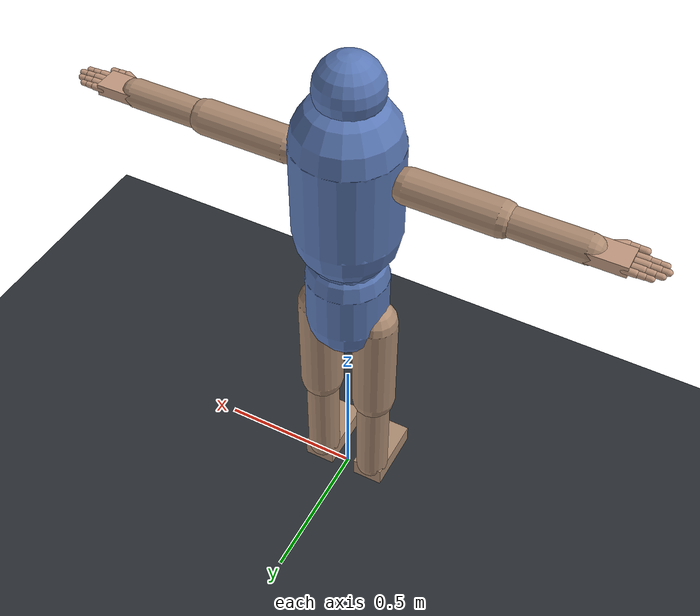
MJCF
<mujoco model="rigby_canonical_human_medium">
  <compiler angle="degree" autolimits="true" inertiafromgeom="auto"/>
  <option timestep="0.0041666667" integrator="implicitfast" solver="Newton" iterations="100">
    <flag filterparent="enable"/>
  </option>
  <size nconmax="600" njmax="3000"/>
  <visual>
    <headlight ambient="0.35 0.35 0.35" diffuse="0.65 0.65 0.65"/>
  </visual>
  <default>
    <joint armature="0.006" damping="0.35" frictionloss="0.03"/>
    <geom type="capsule" density="560" friction="0.9 0.03 0.003"
          solref="0.006 1" solimp="0.9 0.97 0.002" contype="1" conaffinity="1"/>
    <site type="sphere" size="0.008" rgba="1 0.25 0.15 1" group="3"/>
    <motor ctrllimited="true" ctrlrange="-150 150"/>
    <default class="trunk">
      <geom rgba="0.36 0.48 0.72 1"/>
      <joint armature="0.02" damping="1.4"/>
    </default>
    <default class="limb">
      <geom rgba="0.68 0.55 0.45 1"/>
      <joint damping="0.75"/>
    </default>
    <default class="hand">
      <geom rgba="0.76 0.60 0.50 1" density="530"/>
      <joint armature="0.001" damping="0.08" frictionloss="0.01"/>
    </default>
  </default>

  <worldbody>
    <geom name="ground" type="plane" size="4 4 0.1" density="0"
          rgba="0.16 0.18 0.20 1" friction="1.0 0.02 0.002"/>
    <body name="pelvis" pos="0 0 0.900" childclass="trunk">
      <freejoint name="pelvis_free"/>
      <geom name="pelvis_collision" type="capsule" fromto="0 0 -0.08 0 0 0.09" size="0.135"/>
      <site name="pelvis_center" pos="0 0 0" size="0.012"/>

      <body name="lumbar" pos="0 0 0.10">
        <joint name="spine_flex" axis="1 0 0" range="-35 45"/>
        <joint name="spine_side" axis="0 1 0" range="-28 28"/>
        <joint name="spine_twist" axis="0 0 1" range="-40 40"/>
        <geom name="lumbar_collision" fromto="0 0 0 0 0 0.21" size="0.115"/>
        <body name="torso" pos="0 0 0.19">
          <joint name="chest_flex" axis="1 0 0" range="-25 35"/>
          <joint name="chest_side" axis="0 1 0" range="-22 22"/>
          <joint name="chest_twist" axis="0 0 1" range="-35 35"/>
          <geom name="torso_collision" fromto="0 0 0 0 0 0.31" size="0.17"/>
          <site name="sternum" pos="0 -0.16 0.21" size="0.01"/>

          <body name="neck" pos="0 0 0.30">
            <joint name="neck_flex" axis="1 0 0" range="-45 55"/>
            <joint name="neck_side" axis="0 1 0" range="-35 35"/>
            <joint name="neck_twist" axis="0 0 1" range="-70 70"/>
            <geom name="neck_collision" fromto="0 0 0 0 0 0.10" size="0.055"/>
            <body name="head" pos="0 0 0.11">
              <geom name="head_collision" type="sphere" pos="0 -0.01 0.075" size="0.105" density="480"/>
              <site name="head_center" pos="0 -0.01 0.075" size="0.012"/>
              <site name="gaze_origin" pos="0 -0.10 0.09" size="0.006"/>
            </body>
          </body>

          <body name="left_upper_arm" pos="0.19 0 0.23" childclass="limb">
            <joint name="left_shoulder_flex" axis="0 1 0" range="-170 170"/>
            <joint name="left_shoulder_abduct" axis="1 0 0" range="-100 180"/>
            <joint name="left_shoulder_twist" axis="0 0 1" range="-100 100"/>
            <geom name="left_upper_arm_collision" fromto="0 0 0 0.28 0 0" size="0.055"/>
            <body name="left_lower_arm" pos="0.28 0 0">
              <joint name="left_elbow_flex" axis="0 1 0" range="0 150"/>
              <joint name="left_forearm_twist" axis="1 0 0" range="-90 90"/>
              <geom name="left_lower_arm_collision" fromto="0 0 0 0.25 0 0" size="0.045"/>
              <body name="left_hand" pos="0.25 0 0" childclass="hand">
                <joint name="left_wrist_flex" axis="0 1 0" range="-75 75"/>
                <joint name="left_wrist_deviation" axis="0 0 1" range="-30 35"/>
                <geom name="left_palm_collision" type="box" pos="0.055 0 0" size="0.060 0.042 0.018"/>
                <site name="left_palm" pos="0.06 -0.043 0" size="0.01"/>

                <body name="left_thumb_proximal" pos="0.045 -0.047 -0.005">
                  <joint name="left_thumb_opposition" axis="0 0 1" range="-55 55"/>
                  <joint name="left_thumb_mcp" axis="0 1 0" range="-20 70"/>
                  <geom name="left_thumb_proximal_collision" fromto="0 0 0 0.035 -0.018 0" size="0.014"/>
                  <body name="left_thumb_middle" pos="0.035 -0.018 0">
                    <joint name="left_thumb_pip" axis="0 1 0" range="0 85"/>
                    <geom name="left_thumb_middle_collision" fromto="0 0 0 0.028 0 0" size="0.012"/>
                    <body name="left_thumb_distal" pos="0.028 0 0">
                      <joint name="left_thumb_dip" axis="0 1 0" range="0 80"/>
                      <geom name="left_thumb_distal_collision" fromto="0 0 0 0.025 0 0" size="0.011"/>
                      <site name="left_thumb_tip" pos="0.026 0 0"/>
                    </body>
                  </body>
                </body>
                <body name="left_index_proximal" pos="0.108 -0.031 0">
                  <joint name="left_index_mcp" axis="0 1 0" range="-15 95"/>
                  <geom name="left_index_proximal_collision" fromto="0 0 0 0.040 0 0" size="0.012"/>
                  <body name="left_index_middle" pos="0.040 0 0">
                    <joint name="left_index_pip" axis="0 1 0" range="0 115"/>
                    <geom name="left_index_middle_collision" fromto="0 0 0 0.027 0 0" size="0.0105"/>
                    <body name="left_index_distal" pos="0.027 0 0">
                      <joint name="left_index_dip" axis="0 1 0" range="0 90"/>
                      <geom name="left_index_distal_collision" fromto="0 0 0 0.022 0 0" size="0.0095"/>
                      <site name="left_index_tip" pos="0.023 0 0"/>
                    </body>
                  </body>
                </body>
                <body name="left_middle_proximal" pos="0.112 -0.010 0">
                  <joint name="left_middle_mcp" axis="0 1 0" range="-15 95"/>
                  <geom name="left_middle_proximal_collision" fromto="0 0 0 0.043 0 0" size="0.0125"/>
                  <body name="left_middle_middle" pos="0.043 0 0">
                    <joint name="left_middle_pip" axis="0 1 0" range="0 115"/>
                    <geom name="left_middle_middle_collision" fromto="0 0 0 0.030 0 0" size="0.011"/>
                    <body name="left_middle_distal" pos="0.030 0 0">
                      <joint name="left_middle_dip" axis="0 1 0" range="0 90"/>
                      <geom name="left_middle_distal_collision" fromto="0 0 0 0.023 0 0" size="0.010"/>
                      <site name="left_middle_tip" pos="0.024 0 0"/>
                    </body>
                  </body>
                </body>
                <body name="left_ring_proximal" pos="0.108 0.012 0">
                  <joint name="left_ring_mcp" axis="0 1 0" range="-15 95"/>
                  <geom name="left_ring_proximal_collision" fromto="0 0 0 0.040 0 0" size="0.012"/>
                  <body name="left_ring_middle" pos="0.040 0 0">
                    <joint name="left_ring_pip" axis="0 1 0" range="0 115"/>
                    <geom name="left_ring_middle_collision" fromto="0 0 0 0.028 0 0" size="0.0105"/>
                    <body name="left_ring_distal" pos="0.028 0 0">
                      <joint name="left_ring_dip" axis="0 1 0" range="0 90"/>
                      <geom name="left_ring_distal_collision" fromto="0 0 0 0.022 0 0" size="0.0095"/>
                      <site name="left_ring_tip" pos="0.023 0 0"/>
                    </body>
                  </body>
                </body>
                <body name="left_little_proximal" pos="0.100 0.033 0">
                  <joint name="left_little_mcp" axis="0 1 0" range="-15 100"/>
                  <geom name="left_little_proximal_collision" fromto="0 0 0 0.034 0 0" size="0.011"/>
                  <body name="left_little_middle" pos="0.034 0 0">
                    <joint name="left_little_pip" axis="0 1 0" range="0 120"/>
                    <geom name="left_little_middle_collision" fromto="0 0 0 0.023 0 0" size="0.0095"/>
                    <body name="left_little_distal" pos="0.023 0 0">
                      <joint name="left_little_dip" axis="0 1 0" range="0 95"/>
                      <geom name="left_little_distal_collision" fromto="0 0 0 0.019 0 0" size="0.0085"/>
                      <site name="left_little_tip" pos="0.020 0 0"/>
                    </body>
                  </body>
                </body>
              </body>
            </body>
          </body>

          <body name="right_upper_arm" pos="-0.19 0 0.23" childclass="limb">
            <joint name="right_shoulder_flex" axis="0 1 0" range="-170 170"/>
            <joint name="right_shoulder_abduct" axis="1 0 0" range="-180 100"/>
            <joint name="right_shoulder_twist" axis="0 0 1" range="-100 100"/>
            <geom name="right_upper_arm_collision" fromto="0 0 0 -0.28 0 0" size="0.055"/>
            <body name="right_lower_arm" pos="-0.28 0 0">
              <joint name="right_elbow_flex" axis="0 -1 0" range="0 150"/>
              <joint name="right_forearm_twist" axis="1 0 0" range="-90 90"/>
              <geom name="right_lower_arm_collision" fromto="0 0 0 -0.25 0 0" size="0.045"/>
              <body name="right_hand" pos="-0.25 0 0" childclass="hand">
                <joint name="right_wrist_flex" axis="0 -1 0" range="-75 75"/>
                <joint name="right_wrist_deviation" axis="0 0 1" range="-35 30"/>
                <geom name="right_palm_collision" type="box" pos="-0.055 0 0" size="0.060 0.042 0.018"/>
                <site name="right_palm" pos="-0.06 -0.043 0" size="0.01"/>

                <body name="right_thumb_proximal" pos="-0.045 -0.047 -0.005">
                  <joint name="right_thumb_opposition" axis="0 0 -1" range="-55 55"/>
                  <joint name="right_thumb_mcp" axis="0 -1 0" range="-20 70"/>
                  <geom name="right_thumb_proximal_collision" fromto="0 0 0 -0.035 -0.018 0" size="0.014"/>
                  <body name="right_thumb_middle" pos="-0.035 -0.018 0">
                    <joint name="right_thumb_pip" axis="0 -1 0" range="0 85"/>
                    <geom name="right_thumb_middle_collision" fromto="0 0 0 -0.028 0 0" size="0.012"/>
                    <body name="right_thumb_distal" pos="-0.028 0 0">
                      <joint name="right_thumb_dip" axis="0 -1 0" range="0 80"/>
                      <geom name="right_thumb_distal_collision" fromto="0 0 0 -0.025 0 0" size="0.011"/>
                      <site name="right_thumb_tip" pos="-0.026 0 0"/>
                    </body>
                  </body>
                </body>
                <body name="right_index_proximal" pos="-0.108 -0.031 0">
                  <joint name="right_index_mcp" axis="0 -1 0" range="-15 95"/>
                  <geom name="right_index_proximal_collision" fromto="0 0 0 -0.040 0 0" size="0.012"/>
                  <body name="right_index_middle" pos="-0.040 0 0">
                    <joint name="right_index_pip" axis="0 -1 0" range="0 115"/>
                    <geom name="right_index_middle_collision" fromto="0 0 0 -0.027 0 0" size="0.0105"/>
                    <body name="right_index_distal" pos="-0.027 0 0">
                      <joint name="right_index_dip" axis="0 -1 0" range="0 90"/>
                      <geom name="right_index_distal_collision" fromto="0 0 0 -0.022 0 0" size="0.0095"/>
                      <site name="right_index_tip" pos="-0.023 0 0"/>
                    </body>
                  </body>
                </body>
                <body name="right_middle_proximal" pos="-0.112 -0.010 0">
                  <joint name="right_middle_mcp" axis="0 -1 0" range="-15 95"/>
                  <geom name="right_middle_proximal_collision" fromto="0 0 0 -0.043 0 0" size="0.0125"/>
                  <body name="right_middle_middle" pos="-0.043 0 0">
                    <joint name="right_middle_pip" axis="0 -1 0" range="0 115"/>
                    <geom name="right_middle_middle_collision" fromto="0 0 0 -0.030 0 0" size="0.011"/>
                    <body name="right_middle_distal" pos="-0.030 0 0">
                      <joint name="right_middle_dip" axis="0 -1 0" range="0 90"/>
                      <geom name="right_middle_distal_collision" fromto="0 0 0 -0.023 0 0" size="0.010"/>
                      <site name="right_middle_tip" pos="-0.024 0 0"/>
                    </body>
                  </body>
                </body>
                <body name="right_ring_proximal" pos="-0.108 0.012 0">
                  <joint name="right_ring_mcp" axis="0 -1 0" range="-15 95"/>
                  <geom name="right_ring_proximal_collision" fromto="0 0 0 -0.040 0 0" size="0.012"/>
                  <body name="right_ring_middle" pos="-0.040 0 0">
                    <joint name="right_ring_pip" axis="0 -1 0" range="0 115"/>
                    <geom name="right_ring_middle_collision" fromto="0 0 0 -0.028 0 0" size="0.0105"/>
                    <body name="right_ring_distal" pos="-0.028 0 0">
                      <joint name="right_ring_dip" axis="0 -1 0" range="0 90"/>
                      <geom name="right_ring_distal_collision" fromto="0 0 0 -0.022 0 0" size="0.0095"/>
                      <site name="right_ring_tip" pos="-0.023 0 0"/>
                    </body>
                  </body>
                </body>
                <body name="right_little_proximal" pos="-0.100 0.033 0">
                  <joint name="right_little_mcp" axis="0 -1 0" range="-15 100"/>
                  <geom name="right_little_proximal_collision" fromto="0 0 0 -0.034 0 0" size="0.011"/>
                  <body name="right_little_middle" pos="-0.034 0 0">
                    <joint name="right_little_pip" axis="0 -1 0" range="0 120"/>
                    <geom name="right_little_middle_collision" fromto="0 0 0 -0.023 0 0" size="0.0095"/>
                    <body name="right_little_distal" pos="-0.023 0 0">
                      <joint name="right_little_dip" axis="0 -1 0" range="0 95"/>
                      <geom name="right_little_distal_collision" fromto="0 0 0 -0.019 0 0" size="0.0085"/>
                      <site name="right_little_tip" pos="-0.020 0 0"/>
                    </body>
                  </body>
                </body>
              </body>
            </body>
          </body>
        </body>
      </body>

      <body name="left_thigh" pos="0.10 0 -0.08" childclass="limb">
        <joint name="left_hip_flex" axis="1 0 0" range="-125 45"/>
        <joint name="left_hip_abduct" axis="0 1 0" range="-45 55"/>
        <joint name="left_hip_twist" axis="0 0 1" range="-55 55"/>
        <geom name="left_thigh_collision" fromto="0 0 0 0 0 -0.38" size="0.075"/>
        <body name="left_shin" pos="0 0 -0.38">
          <joint name="left_knee_flex" axis="1 0 0" range="0 155"/>
          <geom name="left_shin_collision" fromto="0 0 0 0 0 -0.38" size="0.058"/>
          <body name="left_foot" pos="0 0 -0.38">
            <joint name="left_ankle_flex" axis="1 0 0" range="-45 45"/>
            <joint name="left_ankle_roll" axis="0 1 0" range="-25 25"/>
            <geom name="left_foot_collision" type="box" pos="0 -0.075 -0.025" size="0.055 0.115 0.035" margin="0.001"/>
            <site name="left_foot_sole" pos="0 -0.075 -0.061" size="0.012"/>
          </body>
        </body>
      </body>
      <body name="right_thigh" pos="-0.10 0 -0.08" childclass="limb">
        <joint name="right_hip_flex" axis="1 0 0" range="-125 45"/>
        <joint name="right_hip_abduct" axis="0 1 0" range="-55 45"/>
        <joint name="right_hip_twist" axis="0 0 1" range="-55 55"/>
        <geom name="right_thigh_collision" fromto="0 0 0 0 0 -0.38" size="0.075"/>
        <body name="right_shin" pos="0 0 -0.38">
          <joint name="right_knee_flex" axis="1 0 0" range="0 155"/>
          <geom name="right_shin_collision" fromto="0 0 0 0 0 -0.38" size="0.058"/>
          <body name="right_foot" pos="0 0 -0.38">
            <joint name="right_ankle_flex" axis="1 0 0" range="-45 45"/>
            <joint name="right_ankle_roll" axis="0 1 0" range="-25 25"/>
            <geom name="right_foot_collision" type="box" pos="0 -0.075 -0.025" size="0.055 0.115 0.035" margin="0.001"/>
            <site name="right_foot_sole" pos="0 -0.075 -0.061" size="0.012"/>
          </body>
        </body>
      </body>
    </body>
  </worldbody>

  <contact>
    <exclude body1="pelvis" body2="lumbar"/>
    <exclude body1="pelvis" body2="torso"/>
    <exclude body1="lumbar" body2="torso"/>
    <exclude body1="torso" body2="neck"/>
    <exclude body1="neck" body2="head"/>
    <exclude body1="torso" body2="left_upper_arm"/>
    <exclude body1="left_upper_arm" body2="left_lower_arm"/>
    <exclude body1="left_lower_arm" body2="left_hand"/>
    <exclude body1="torso" body2="right_upper_arm"/>
    <exclude body1="right_upper_arm" body2="right_lower_arm"/>
    <exclude body1="right_lower_arm" body2="right_hand"/>
    <exclude body1="pelvis" body2="left_thigh"/>
    <exclude body1="left_thigh" body2="left_shin"/>
    <exclude body1="left_shin" body2="left_foot"/>
    <exclude body1="pelvis" body2="right_thigh"/>
    <exclude body1="right_thigh" body2="right_shin"/>
    <exclude body1="right_shin" body2="right_foot"/>
    <exclude body1="left_hand" body2="left_thumb_proximal"/>
    <exclude body1="left_thumb_proximal" body2="left_thumb_middle"/>
    <exclude body1="left_thumb_middle" body2="left_thumb_distal"/>
    <exclude body1="left_hand" body2="left_index_proximal"/>
    <exclude body1="left_index_proximal" body2="left_index_middle"/>
    <exclude body1="left_index_middle" body2="left_index_distal"/>
    <exclude body1="left_hand" body2="left_middle_proximal"/>
    <exclude body1="left_middle_proximal" body2="left_middle_middle"/>
    <exclude body1="left_middle_middle" body2="left_middle_distal"/>
    <exclude body1="left_hand" body2="left_ring_proximal"/>
    <exclude body1="left_ring_proximal" body2="left_ring_middle"/>
    <exclude body1="left_ring_middle" body2="left_ring_distal"/>
    <exclude body1="left_hand" body2="left_little_proximal"/>
    <exclude body1="left_little_proximal" body2="left_little_middle"/>
    <exclude body1="left_little_middle" body2="left_little_distal"/>
    <exclude body1="left_index_proximal" body2="left_middle_proximal"/>
    <exclude body1="left_index_proximal" body2="left_middle_middle"/>
    <exclude body1="left_index_middle" body2="left_middle_proximal"/>
    <exclude body1="left_index_middle" body2="left_middle_middle"/>
    <exclude body1="left_middle_proximal" body2="left_ring_proximal"/>
    <exclude body1="left_middle_proximal" body2="left_ring_middle"/>
    <exclude body1="left_ring_proximal" body2="left_little_proximal"/>
    <exclude body1="left_ring_proximal" body2="left_little_middle"/>
    <exclude body1="right_hand" body2="right_thumb_proximal"/>
    <exclude body1="right_thumb_proximal" body2="right_thumb_middle"/>
    <exclude body1="right_thumb_middle" body2="right_thumb_distal"/>
    <exclude body1="right_hand" body2="right_index_proximal"/>
    <exclude body1="right_index_proximal" body2="right_index_middle"/>
    <exclude body1="right_index_middle" body2="right_index_distal"/>
    <exclude body1="right_hand" body2="right_middle_proximal"/>
    <exclude body1="right_middle_proximal" body2="right_middle_middle"/>
    <exclude body1="right_middle_middle" body2="right_middle_distal"/>
    <exclude body1="right_hand" body2="right_ring_proximal"/>
    <exclude body1="right_ring_proximal" body2="right_ring_middle"/>
    <exclude body1="right_ring_middle" body2="right_ring_distal"/>
    <exclude body1="right_hand" body2="right_little_proximal"/>
    <exclude body1="right_little_proximal" body2="right_little_middle"/>
    <exclude body1="right_little_middle" body2="right_little_distal"/>
    <exclude body1="right_index_proximal" body2="right_middle_proximal"/>
    <exclude body1="right_index_proximal" body2="right_middle_middle"/>
    <exclude body1="right_index_middle" body2="right_middle_proximal"/>
    <exclude body1="right_index_middle" body2="right_middle_middle"/>
    <exclude body1="right_middle_proximal" body2="right_ring_proximal"/>
    <exclude body1="right_middle_proximal" body2="right_ring_middle"/>
    <exclude body1="right_ring_proximal" body2="right_little_proximal"/>
    <exclude body1="right_ring_proximal" body2="right_little_middle"/>
  </contact>

  <actuator>
    <motor name="a_spine_flex" joint="spine_flex"/><motor name="a_spine_side" joint="spine_side"/><motor name="a_spine_twist" joint="spine_twist"/>
    <motor name="a_chest_flex" joint="chest_flex"/><motor name="a_chest_side" joint="chest_side"/><motor name="a_chest_twist" joint="chest_twist"/>
    <motor name="a_neck_flex" joint="neck_flex"/><motor name="a_neck_side" joint="neck_side"/><motor name="a_neck_twist" joint="neck_twist"/>
    <motor name="a_left_shoulder_flex" joint="left_shoulder_flex"/><motor name="a_left_shoulder_abduct" joint="left_shoulder_abduct"/><motor name="a_left_shoulder_twist" joint="left_shoulder_twist"/>
    <motor name="a_left_elbow_flex" joint="left_elbow_flex"/><motor name="a_left_forearm_twist" joint="left_forearm_twist"/><motor name="a_left_wrist_flex" joint="left_wrist_flex"/><motor name="a_left_wrist_deviation" joint="left_wrist_deviation"/>
    <motor name="a_right_shoulder_flex" joint="right_shoulder_flex"/><motor name="a_right_shoulder_abduct" joint="right_shoulder_abduct"/><motor name="a_right_shoulder_twist" joint="right_shoulder_twist"/>
    <motor name="a_right_elbow_flex" joint="right_elbow_flex"/><motor name="a_right_forearm_twist" joint="right_forearm_twist"/><motor name="a_right_wrist_flex" joint="right_wrist_flex"/><motor name="a_right_wrist_deviation" joint="right_wrist_deviation"/>
    <motor name="a_left_hip_flex" joint="left_hip_flex"/><motor name="a_left_hip_abduct" joint="left_hip_abduct"/><motor name="a_left_hip_twist" joint="left_hip_twist"/><motor name="a_left_knee_flex" joint="left_knee_flex"/><motor name="a_left_ankle_flex" joint="left_ankle_flex"/><motor name="a_left_ankle_roll" joint="left_ankle_roll"/>
    <motor name="a_right_hip_flex" joint="right_hip_flex"/><motor name="a_right_hip_abduct" joint="right_hip_abduct"/><motor name="a_right_hip_twist" joint="right_hip_twist"/><motor name="a_right_knee_flex" joint="right_knee_flex"/><motor name="a_right_ankle_flex" joint="right_ankle_flex"/><motor name="a_right_ankle_roll" joint="right_ankle_roll"/>
    <motor name="a_left_thumb_opposition" joint="left_thumb_opposition"/><motor name="a_left_thumb_mcp" joint="left_thumb_mcp"/><motor name="a_left_thumb_pip" joint="left_thumb_pip"/><motor name="a_left_thumb_dip" joint="left_thumb_dip"/>
    <motor name="a_left_index_mcp" joint="left_index_mcp"/><motor name="a_left_index_pip" joint="left_index_pip"/><motor name="a_left_index_dip" joint="left_index_dip"/>
    <motor name="a_left_middle_mcp" joint="left_middle_mcp"/><motor name="a_left_middle_pip" joint="left_middle_pip"/><motor name="a_left_middle_dip" joint="left_middle_dip"/>
    <motor name="a_left_ring_mcp" joint="left_ring_mcp"/><motor name="a_left_ring_pip" joint="left_ring_pip"/><motor name="a_left_ring_dip" joint="left_ring_dip"/>
    <motor name="a_left_little_mcp" joint="left_little_mcp"/><motor name="a_left_little_pip" joint="left_little_pip"/><motor name="a_left_little_dip" joint="left_little_dip"/>
    <motor name="a_right_thumb_opposition" joint="right_thumb_opposition"/><motor name="a_right_thumb_mcp" joint="right_thumb_mcp"/><motor name="a_right_thumb_pip" joint="right_thumb_pip"/><motor name="a_right_thumb_dip" joint="right_thumb_dip"/>
    <motor name="a_right_index_mcp" joint="right_index_mcp"/><motor name="a_right_index_pip" joint="right_index_pip"/><motor name="a_right_index_dip" joint="right_index_dip"/>
    <motor name="a_right_middle_mcp" joint="right_middle_mcp"/><motor name="a_right_middle_pip" joint="right_middle_pip"/><motor name="a_right_middle_dip" joint="right_middle_dip"/>
    <motor name="a_right_ring_mcp" joint="right_ring_mcp"/><motor name="a_right_ring_pip" joint="right_ring_pip"/><motor name="a_right_ring_dip" joint="right_ring_dip"/>
    <motor name="a_right_little_mcp" joint="right_little_mcp"/><motor name="a_right_little_pip" joint="right_little_pip"/><motor name="a_right_little_dip" joint="right_little_dip"/>
  </actuator>
</mujoco>
